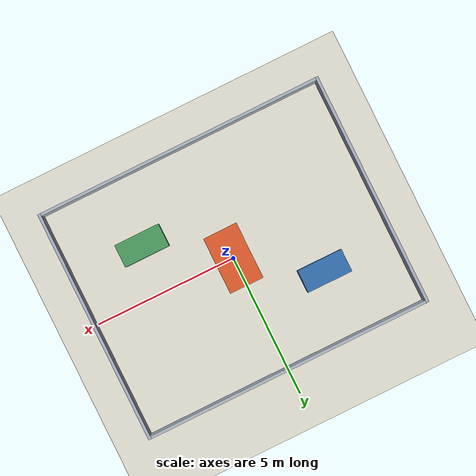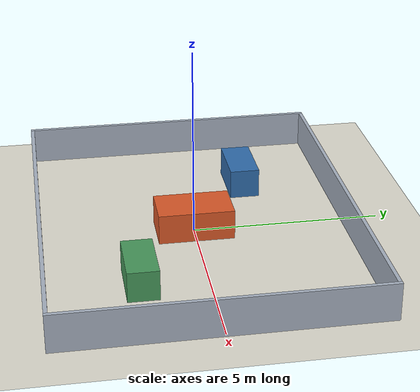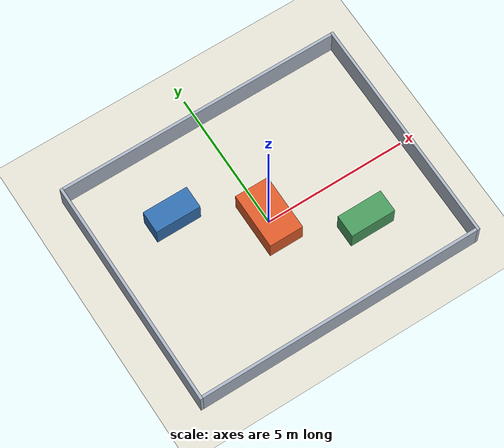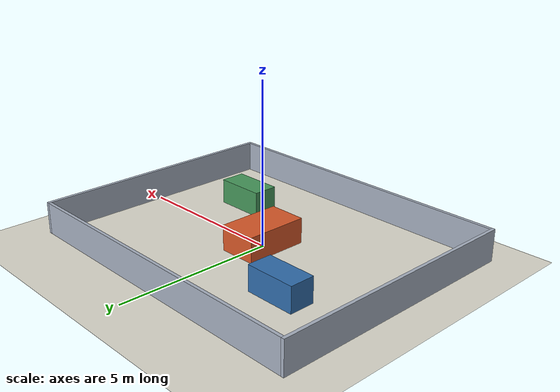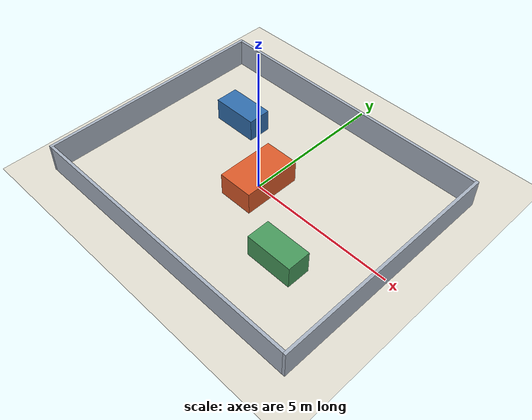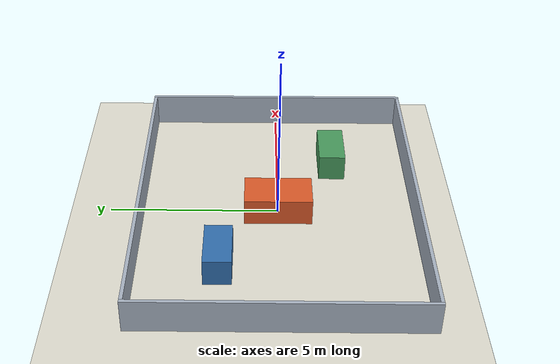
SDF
<?xml version='1.0'?>
<!-- Generated by scripts/generate_sim_world.py; edit the generator to change geometry.
     Suggested robot spawn: (-3, -2, yaw=0).
     Smoke-test goal: (-1, -2). Obstacle-detour goal: (3, 2). -->
<sdf version='1.6'>
  <world name='simulation_room'>
    <gravity>0 0 -9.81</gravity>
    <physics name='default_physics' default='true' type='ode'>
      <max_step_size>0.001</max_step_size>
      <real_time_factor>1</real_time_factor>
      <real_time_update_rate>1000</real_time_update_rate>
    </physics>
    <scene>
      <ambient>0.55 0.55 0.55 1</ambient>
      <background>0.80 0.85 0.90 1</background>
      <shadows>true</shadows>
    </scene>
    <light name='sun' type='directional'>
      <cast_shadows>true</cast_shadows>
      <pose>0 0 10 0 0 0</pose>
      <diffuse>0.80 0.80 0.80 1</diffuse>
      <specular>0.20 0.20 0.20 1</specular>
      <attenuation><range>1000</range><constant>0.9</constant><linear>0.01</linear><quadratic>0.001</quadratic></attenuation>
      <direction>-0.3 0.1 -0.9</direction>
    </light>
    <model name='ground_plane'>
      <static>true</static>
      <link name='ground'>
        <collision name='collision'>
          <geometry><plane><normal>0 0 1</normal><size>100 100</size></plane></geometry>
          <surface><friction><ode><mu>1</mu><mu2>1</mu2></ode></friction></surface>
        </collision>
        <visual name='visual'>
          <geometry><plane><normal>0 0 1</normal><size>100 100</size></plane></geometry>
          <material><ambient>0.88 0.87 0.82 1</ambient><diffuse>0.88 0.87 0.82 1</diffuse></material>
        </visual>
      </link>
    </model>
    <model name='west_wall'>
      <static>true</static>
      <pose>-5.050 0.000 0.500 0 0 0</pose>
      <link name='body'>
        <collision name='collision'>
          <geometry><box><size>0.100 8.200 1.000</size></box></geometry>
        </collision>
        <visual name='visual'>
          <geometry><box><size>0.100 8.200 1.000</size></box></geometry>
          <material>
            <ambient>0.66 0.70 0.76 1</ambient>
            <diffuse>0.66 0.70 0.76 1</diffuse>
          </material>
        </visual>
      </link>
    </model>
    <model name='east_wall'>
      <static>true</static>
      <pose>5.050 0.000 0.500 0 0 0</pose>
      <link name='body'>
        <collision name='collision'>
          <geometry><box><size>0.100 8.200 1.000</size></box></geometry>
        </collision>
        <visual name='visual'>
          <geometry><box><size>0.100 8.200 1.000</size></box></geometry>
          <material>
            <ambient>0.66 0.70 0.76 1</ambient>
            <diffuse>0.66 0.70 0.76 1</diffuse>
          </material>
        </visual>
      </link>
    </model>
    <model name='south_wall'>
      <static>true</static>
      <pose>0.000 -4.050 0.500 0 0 0</pose>
      <link name='body'>
        <collision name='collision'>
          <geometry><box><size>10.000 0.100 1.000</size></box></geometry>
        </collision>
        <visual name='visual'>
          <geometry><box><size>10.000 0.100 1.000</size></box></geometry>
          <material>
            <ambient>0.66 0.70 0.76 1</ambient>
            <diffuse>0.66 0.70 0.76 1</diffuse>
          </material>
        </visual>
      </link>
    </model>
    <model name='north_wall'>
      <static>true</static>
      <pose>0.000 4.050 0.500 0 0 0</pose>
      <link name='body'>
        <collision name='collision'>
          <geometry><box><size>10.000 0.100 1.000</size></box></geometry>
        </collision>
        <visual name='visual'>
          <geometry><box><size>10.000 0.100 1.000</size></box></geometry>
          <material>
            <ambient>0.66 0.70 0.76 1</ambient>
            <diffuse>0.66 0.70 0.76 1</diffuse>
          </material>
        </visual>
      </link>
    </model>
    <model name='central_obstacle'>
      <static>true</static>
      <pose>0.000 0.000 0.400 0 0 0</pose>
      <link name='body'>
        <collision name='collision'>
          <geometry><box><size>1.200 2.000 0.800</size></box></geometry>
        </collision>
        <visual name='visual'>
          <geometry><box><size>1.200 2.000 0.800</size></box></geometry>
          <material>
            <ambient>0.86 0.35 0.16 1</ambient>
            <diffuse>0.86 0.35 0.16 1</diffuse>
          </material>
        </visual>
      </link>
    </model>
    <model name='upper_left_shelf'>
      <static>true</static>
      <pose>-2.500 1.700 0.400 0 0 0</pose>
      <link name='body'>
        <collision name='collision'>
          <geometry><box><size>1.600 0.800 0.800</size></box></geometry>
        </collision>
        <visual name='visual'>
          <geometry><box><size>1.600 0.800 0.800</size></box></geometry>
          <material>
            <ambient>0.19 0.43 0.68 1</ambient>
            <diffuse>0.19 0.43 0.68 1</diffuse>
          </material>
        </visual>
      </link>
    </model>
    <model name='lower_right_shelf'>
      <static>true</static>
      <pose>2.500 -1.700 0.400 0 0 0</pose>
      <link name='body'>
        <collision name='collision'>
          <geometry><box><size>1.600 0.800 0.800</size></box></geometry>
        </collision>
        <visual name='visual'>
          <geometry><box><size>1.600 0.800 0.800</size></box></geometry>
          <material>
            <ambient>0.28 0.60 0.36 1</ambient>
            <diffuse>0.28 0.60 0.36 1</diffuse>
          </material>
        </visual>
      </link>
    </model>
    <gui fullscreen='false'>
      <camera name='overview'>
        <pose>7 -9 11 0 0.75 2.25</pose>
      </camera>
    </gui>
  </world>
</sdf>
